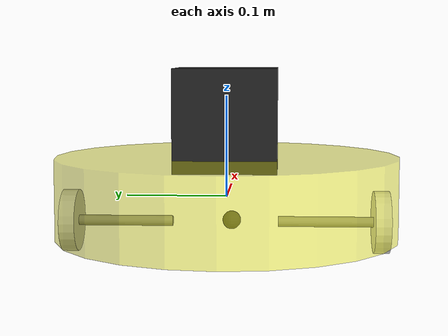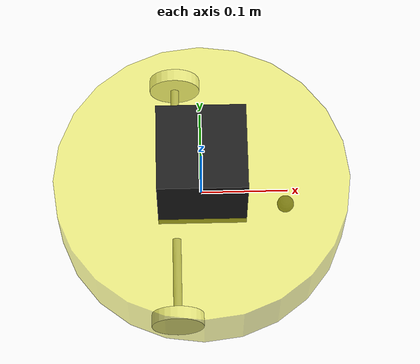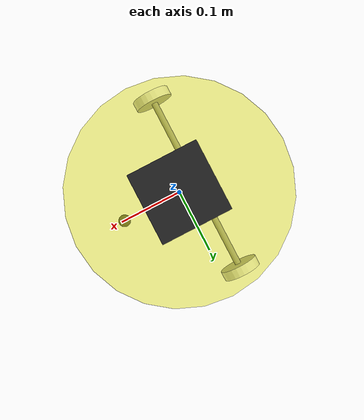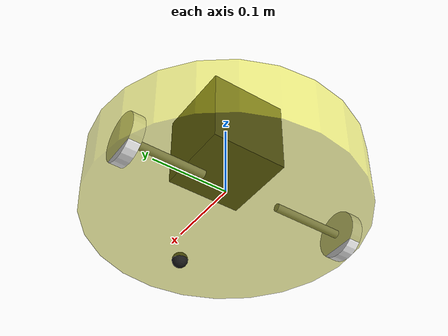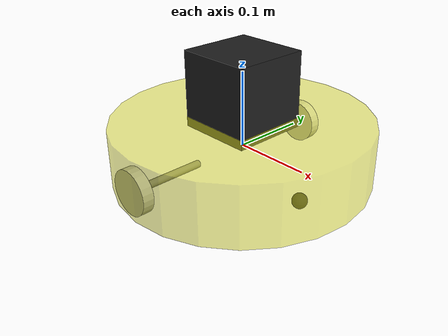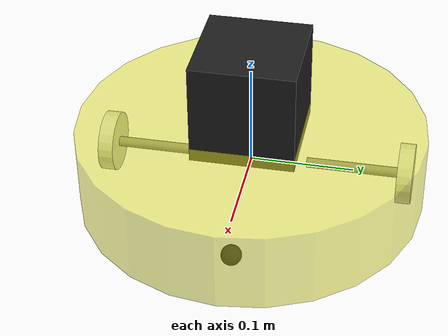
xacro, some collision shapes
<!-- 组合小车底盘与摄像头 -->
<robot name="my_car_camera" xmlns:xacro="http://wiki.ros.org/xacro">
    <xacro:include filename="$(find urdf_learning)/urdf/main.xacro"/>
    <xacro:include filename="$(find urdf_learning)/urdf/move.xacro"/>
    <xacro:include filename="$(find urdf_learning)/urdf/rplidar.xacro"/>
    <joint name="rplidar_joint" type="fixed">
        <origin xyz="0 0 ${0.07+wheel_height/2}" rpy="0 0 0"/>
        <parent link="base_link"/>
        <child link="laser_link"/>
    </joint>
</robot>

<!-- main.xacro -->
<robot name="urdf_learning" xmlns:xacro="http://ros.org/wiki/xacro">

    <!-- 标签定义 -->

    <!-- 属性 -->
    <xacro:property name="PI" value="3.141592653589"/>
    <xacro:property name="base_height" value="0.08"/>
    <xacro:property name="base_radius" value="0.17"/>
    <xacro:property name="caster_radius" value="0.01"/>
    <xacro:property name="motor_height" value="0.1"/>
    <xacro:property name="motor_radius" value="0.005"/>
    <xacro:property name="wheel_height" value="0.015"/>
    <xacro:property name="wheel_radius" value="0.03"/>

    <xacro:property name="base_color" value="0.9 0.9 0.1 0.5"/>
    <xacro:property name="caster_color" value="0.1 0.1 0.1 1"/>
    <xacro:property name="motor_color" value="0.5 0.5 0.5 1"/>
    <xacro:property name="wheel_color" value="0.9 0.9 0.9 1"/>

    <xacro:property name="base_mass" value="1"/>
    <xacro:property name="caster_mass" value="0.05"/>
    <xacro:property name="motor_mass" value="0.1"/>
    <xacro:property name="wheel_mass" value="0.05"/>

    <xacro:property name="base_origin_xyz" value="0 0 0"/>
    <xacro:property name="base_origin_rpy" value="0 0 0"/>
    <xacro:property name="caster_origin_xyz" value="0 0 0"/>
    <xacro:property name="caster_origin_rpy" value="0 0 0"/>
    <xacro:property name="motor_origin_y" value="0.001"/>
    <xacro:property name="motor_origin_rpy" value="${PI/2} 0 0"/>
    <xacro:property name="wheel_origin_y" value="0.025"/>
    <xacro:property name="wheel_origin_rpy" value="${PI/2} 0 0"/>

    <xacro:property name="base_to_caster_joint_xyz" value="0.1 0 -0.04"/>
    <xacro:property name="base_to_caster_joint_rpy" value="0 0 0"/>

    <xacro:property name="base_to_motor_joint_y" value="0.1"/>
    <xacro:property name="base_to_motor_joint_rpy" value="0 0 0"/>

    <xacro:property name="motor_to_wheel_joint_y" value="0.025"/>
    <xacro:property name="motor_to_wheel_joint_rpy" value="0 0 0"/>

    <xacro:property name="wheel_joint_xyz" value="0 0 0"/>
    <xacro:property name="wheel_joint_rpy" value="0 ${PI/2} 0"/>
    <xacro:property name="wheel_joint_axis" value="0 1 0"/>

    <xacro:property name="motor_joint_xyz" value="0 0 0"/>
    <xacro:property name="motor_joint_rpy" value="0 ${PI/2} 0"/>
    <xacro:property name="motor_joint_axis" value="0 1 0"/>

    <!-- Macro for inertia matrix -->
    <xacro:macro name="sphere_inertial_matrix" params="m r">
        <inertial>
            <mass value="${m}" />
            <inertia ixx="${2*m*r*r/5}" ixy="0" ixz="0"
                iyy="${2*m*r*r/5}" iyz="0"
                izz="${2*m*r*r/5}" />
        </inertial>
    </xacro:macro>

    <xacro:macro name="cylinder_inertial_matrix" params="m r h">
        <inertial>
            <mass value="${m}" />
            <inertia ixx="${m*(3*r*r+h*h)/12}" ixy = "0" ixz = "0"
                iyy="${m*(3*r*r+h*h)/12}" iyz = "0"
                izz="${m*r*r/2}" />
        </inertial>
    </xacro:macro>

    <xacro:macro name="Box_inertial_matrix" params="m l w h">
       <inertial>
               <mass value="${m}" />
               <inertia ixx="${m*(h*h + l*l)/12}" ixy = "0" ixz = "0"
                   iyy="${m*(w*w + l*l)/12}" iyz= "0"
                   izz="${m*(w*w + h*h)/12}" />
       </inertial>
   </xacro:macro>

    <xacro:macro name="base_link">
        <link name="base_link">
            <visual>
                <origin xyz="${base_origin_xyz}" rpy="${base_origin_rpy}"/>
                <geometry>
                    <cylinder length="${base_height}" radius="${base_radius}"/>
                </geometry>
                <material name="blue">
                    <color rgba="${base_color}"/>
                </material>
            </visual>
            <collision>
                <origin xyz="${base_origin_xyz}" rpy="${base_origin_rpy}"/>
                <geometry>
                    <cylinder length="${base_height}" radius="${base_radius}"/>
                </geometry>
            </collision>
            <xacro:cylinder_inertial_matrix m="${base_mass}" r="${base_radius}" h="${base_height}"/>

        </link>
        <gazebo reference="base_link">
            <material>Gazebo/Blue</material>
        </gazebo>
    </xacro:macro>
    <xacro:macro name="caster_link">
        <link name="caster_link">
            <visual>
                <origin xyz="${caster_origin_xyz}" rpy="${caster_origin_rpy}"/>
                <geometry>
                    <sphere radius="${caster_radius}"/>
                </geometry>
                <material name="black">
                    <color rgba="${caster_color}"/>
                </material>
            </visual>
            <collision>
                <origin xyz="${caster_origin_xyz}" rpy="${caster_origin_rpy}"/>
                <geometry>
                    <sphere radius="${caster_radius}"/>
                </geometry>
            </collision>
            <xacro:sphere_inertial_matrix m="${caster_mass}" r="${caster_radius}"/>

        </link>
        <gazebo reference="caster_link">
            <material>Gazebo/Black</material>
        </gazebo>
</xacro:macro>
    <xacro:macro name="motor_link" params="name flag">
        <link name="${name}_motor_link">
            <visual>
                <origin xyz="0 ${flag*motor_origin_y} 0" rpy="${motor_origin_rpy}"/>
                <geometry>
                    <cylinder length="${motor_height}" radius="${motor_radius}"/>
                </geometry>
                <material name="red">
                    <color rgba="${motor_color}"/>
                </material>
            </visual>
            <collision>
                <origin xyz="0 ${flag*motor_origin_y} 0" rpy="${motor_origin_rpy}"/>
                <geometry>
                    <cylinder length="${motor_height}" radius="${motor_radius}"/>
                </geometry>
            </collision>
            <xacro:cylinder_inertial_matrix m="${motor_mass}" r="${motor_radius}" h="${motor_height}"/>

        </link>
        <gazebo reference="${name}_motor_link">
            <material>Gazebo/Red</material>
        </gazebo>
    </xacro:macro>
    <xacro:macro name="wheel_link" params="name flag">
        <link name="${name}_wheel_link">
            <visual>
                <origin xyz="0 ${flag*wheel_origin_y} 0" rpy="${wheel_origin_rpy}"/>
                <geometry>
                    <cylinder length="${wheel_height}" radius="${wheel_radius}"/>
                </geometry>
                <material name="green">
                    <color rgba="${wheel_color}"/>
                </material>
            </visual>
            <collision>
                <origin xyz="0 ${flag*wheel_origin_y} 0" rpy="${wheel_origin_rpy}"/>
                <geometry>
                    <cylinder length="${wheel_height}" radius="${wheel_radius}"/>
                </geometry>
            </collision>
            <xacro:cylinder_inertial_matrix m="${wheel_mass}" r="${wheel_radius}" h="${wheel_height}"/>

        </link>
        <gazebo reference="${name}_wheel_link">
            <material>Gazebo/Green</material>
        </gazebo>
    </xacro:macro>

    <!-- 关节 -->
    <xacro:macro name="caster_joint" >
        <joint name="base_to_caster_joint" type="continuous">
            <parent link="base_link"/>
            <child link="caster_link"/>
            <origin xyz="${base_to_caster_joint_xyz}" rpy="${base_to_caster_joint_rpy}"/>
        </joint>
    </xacro:macro>
    <xacro:macro name="motor_joint" params="name flag">
        <joint name="base_to_${name}_motor_joint" type="fixed">
            <parent link="base_link"/>
            <child link="${name}_motor_link"/>
            <origin xyz="-0.03 ${flag*base_to_motor_joint_y} -0.02" rpy="${base_to_motor_joint_rpy}"/>
            <axis xyz="${motor_joint_axis}"/>
        </joint>
    </xacro:macro>
    <xacro:macro name="wheel_joint" params="name flag">
        <joint name="motor_to_${name}_wheel_joint" type="continuous">
            <parent link="${name}_motor_link"/>
            <child link="${name}_wheel_link"/>
            <origin xyz="0 ${flag*motor_to_wheel_joint_y} 0" rpy="${motor_to_wheel_joint_rpy}"/>
            <axis xyz="${wheel_joint_axis}"/>
        </joint>
    </xacro:macro>

    <!-- 实例化 -->
    <xacro:base_link/>
    <xacro:caster_link/>
    <xacro:motor_link name="lf" flag="1"/>
    <xacro:motor_link name="rf" flag="-1"/>
    <xacro:wheel_link name="lf" flag="1"/>
    <xacro:wheel_link name="rf" flag="-1"/>
    <xacro:caster_joint/>
    <xacro:motor_joint name="lf" flag="1"/>
    <xacro:motor_joint name="rf" flag="-1"/>
    <xacro:wheel_joint name="lf" flag="1"/>
    <xacro:wheel_joint name="rf" flag="-1"/>

</robot>

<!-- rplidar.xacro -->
<robot name="my_sensors" xmlns:xacro="http://wiki.ros.org/xacro">

    <xacro:property name="A1M8_size" value="0.1"/>
    <xacro:property name="A1M8_mass" value="0.2"/>

    <!-- chang fang ti -->
    <xacro:macro name="box_inertial" params="m x y z">
        <inertial>
            <mass value="${m}" />
            <inertia ixx="${m*(y*y+z*z)/12}" ixy = "0" ixz = "0"
                iyy="${m*(x*x+z*z)/12}" iyz = "0" izz="${m*(x*x+y*y)/2}" />
        </inertial>
    </xacro:macro>

    <xacro:macro name="rpliadr_A1M8" >
    <!-- Create laser reference frame -->

        <link name="laser_link" >
            <visual>
                <origin xyz=" 0 0 0 " rpy="0 0 0" />
                <geometry>
                    <mesh filename="package://urdf_learning/meshes/rplidar.dae"/>
                </geometry>
            </visual>

            <collision>
                <origin xyz="0.0 0.0 0.0" rpy="0 0 0" />
                <geometry>
                    <box size="${A1M8_size} ${A1M8_size} ${A1M8_size}"/>
                </geometry>
            </collision>

            <xacro:box_inertial m="${A1M8_mass}" x="${A1M8_size}" y="${A1M8_size}" z="${A1M8_size}"/>
        </link>

        <!-- the reference of gazebo must be same with link name!!! or occor error!!! -->
        <!-- show rplidar : https://blog.csdn.net/weixin_51067502/article/details/121623309 -->
        <!-- show odometry: https://blog.csdn.net/weixin_43831098/article/details/126697280 -->
        <gazebo reference="laser_link">
            <sensor type="ray" name="A1M8">
                <pose>0 0 0 0 0 0</pose>
                <visualize>true</visualize>
                <update_rate>5.5</update_rate>
                <ray>
                    <scan>
                        <horizontal>
                            <samples>360</samples>
                            <resolution>1</resolution>
                            <min_angle>-3</min_angle>
                            <max_angle>3</max_angle>
                        </horizontal>
                    </scan>
                    <range>
                      <min>0.15</min>
                      <max>30</max>
                      <resolution>0.01</resolution>
                    </range>

                    <noise>
                        <type>gaussian</type>
                        <mean>0.0</mean>
                        <stddev>0.01</stddev>
                    </noise>
                </ray>
                <plugin name="gazebo_rplidar" filename="libgazebo_ros_laser.so">
                    <topicName>/scan</topicName>
                    <frameName>laser_link</frameName>
                </plugin>
            </sensor>
            <material>Gazebo/Black</material>
        </gazebo>
    </xacro:macro>

    <xacro:rpliadr_A1M8/>

</robot>
